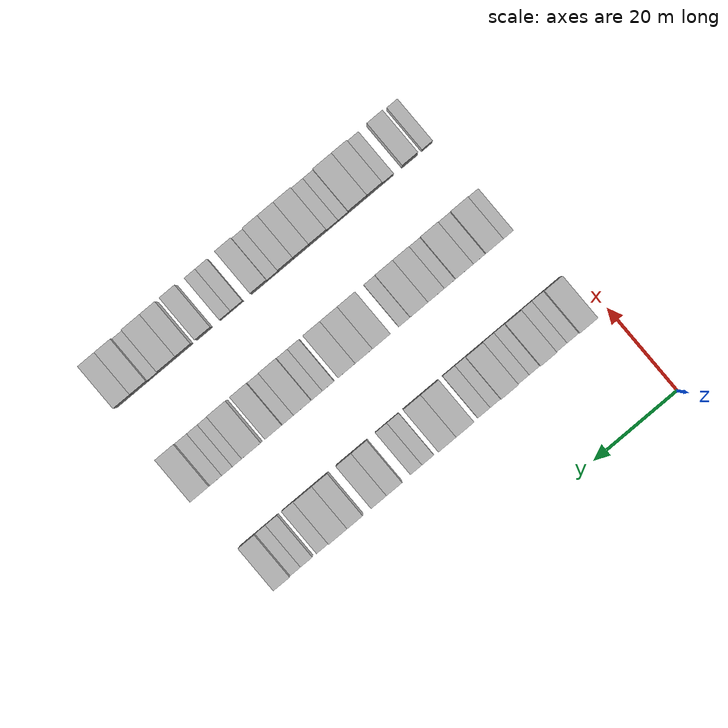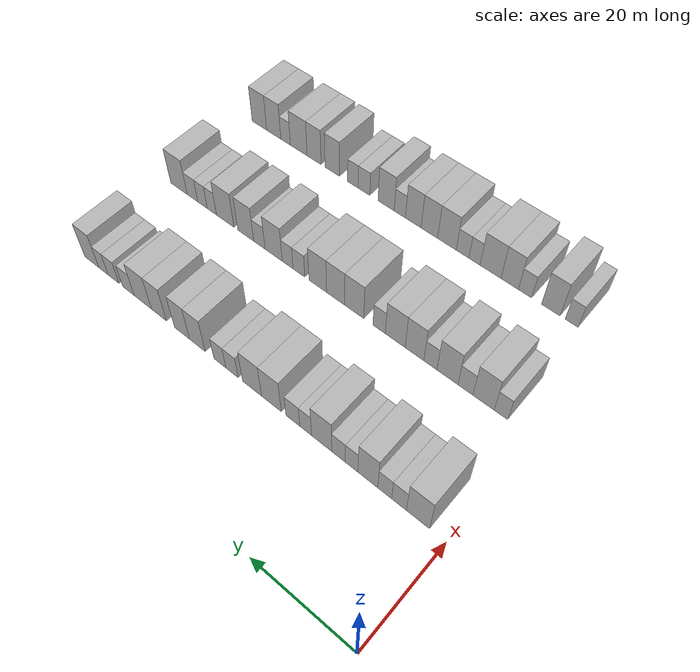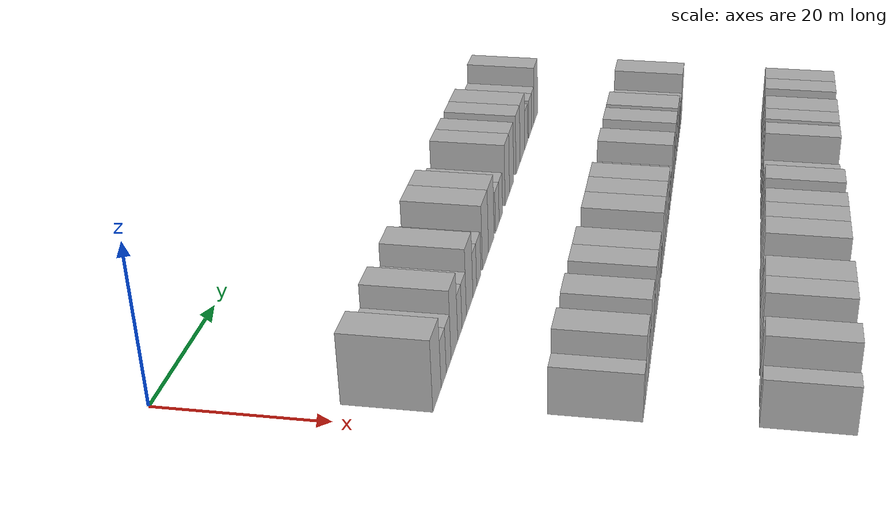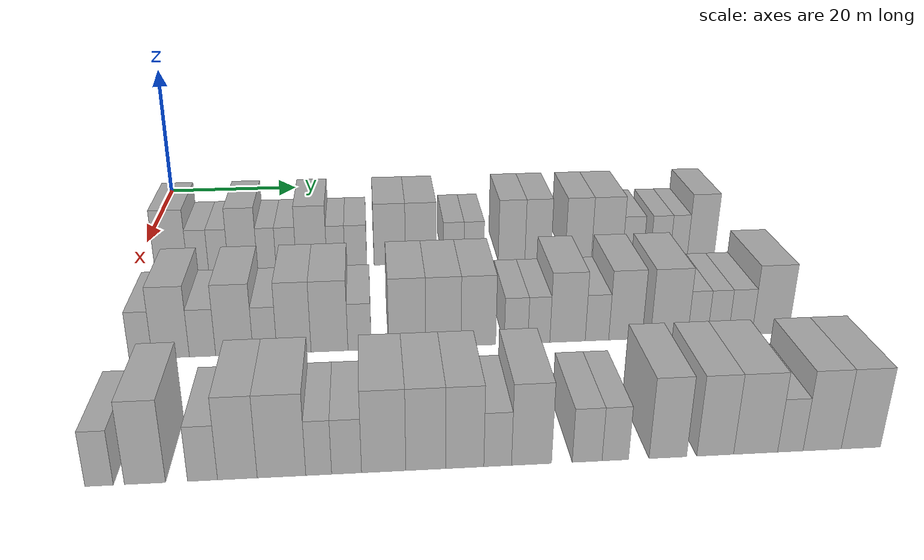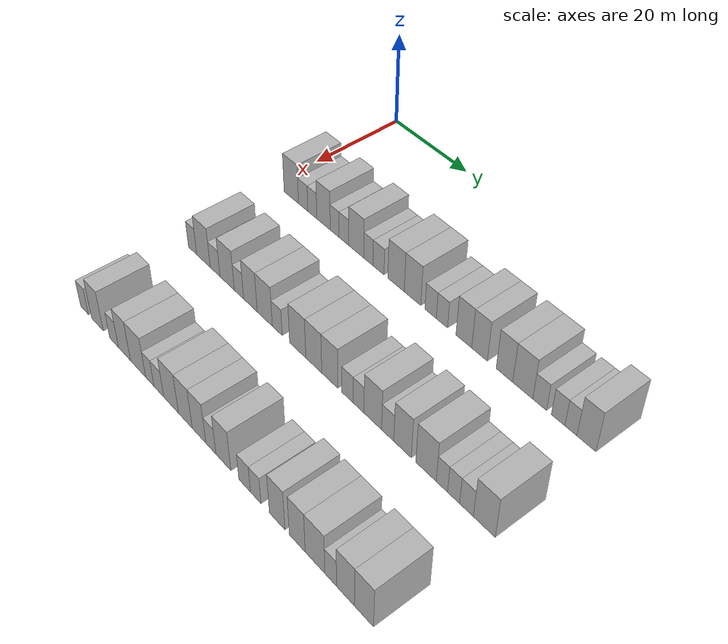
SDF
<sdf version="1.6">
 <world name="default">
  <model name="building_66">
   <static>1</static>
   <pose>25.0000 5.2061 0 0.000000 0.000000 0.000000</pose>
   <link name="link">
    <pose>0 0 4.50 0 0 0</pose>
    <collision name="collision"><geometry><box><size>10.0000 4.2936 9.0000</size></box></geometry></collision>
    <visual name="visual">
     <cast_shadows>0</cast_shadows>
     <geometry><box><size>10.0000 4.2936 9.0000</size></box></geometry>
     <material>
      <script>
       <uri>model://HANNAS_wall/materials/scripts</uri>
       <uri>model://HANNAS_wall/materials/textures</uri>
       <name>vrc/HANNAS_wall</name>
      </script>
     </material>
    </visual>
   </link>
  </model>
  <model name="building_67">
   <static>1</static>
   <pose>25.0000 8.7411 0 0.000000 0.000000 0.000000</pose>
   <link name="link">
    <pose>0 0 3.00 0 0 0</pose>
    <collision name="collision"><geometry><box><size>10.0000 2.7764 6.0000</size></box></geometry></collision>
    <visual name="visual">
     <cast_shadows>0</cast_shadows>
     <geometry><box><size>10.0000 2.7764 6.0000</size></box></geometry>
     <material>
      <script>
       <uri>model://HANNAS_wall/materials/scripts</uri>
       <uri>model://HANNAS_wall/materials/textures</uri>
       <name>vrc/HANNAS_wall</name>
      </script>
     </material>
    </visual>
   </link>
  </model>
  <model name="building_68">
   <static>1</static>
   <pose>25.0000 11.4494 0 0.000000 0.000000 0.000000</pose>
   <link name="link">
    <pose>0 0 3.00 0 0 0</pose>
    <collision name="collision"><geometry><box><size>10.0000 2.6401 6.0000</size></box></geometry></collision>
    <visual name="visual">
     <cast_shadows>0</cast_shadows>
     <geometry><box><size>10.0000 2.6401 6.0000</size></box></geometry>
     <material>
      <script>
       <uri>model://HANNAS_wall/materials/scripts</uri>
       <uri>model://HANNAS_wall/materials/textures</uri>
       <name>vrc/HANNAS_wall</name>
      </script>
     </material>
    </visual>
   </link>
  </model>
  <model name="building_69">
   <static>1</static>
   <pose>25.0000 14.7061 0 0.000000 0.000000 0.000000</pose>
   <link name="link">
    <pose>0 0 4.50 0 0 0</pose>
    <collision name="collision"><geometry><box><size>10.0000 3.8732 9.0000</size></box></geometry></collision>
    <visual name="visual">
     <cast_shadows>0</cast_shadows>
     <geometry><box><size>10.0000 3.8732 9.0000</size></box></geometry>
     <material>
      <script>
       <uri>model://HANNAS_wall/materials/scripts</uri>
       <uri>model://HANNAS_wall/materials/textures</uri>
       <name>vrc/HANNAS_wall</name>
      </script>
     </material>
    </visual>
   </link>
  </model>
  <model name="building_70">
   <static>1</static>
   <pose>25.0000 17.8918 0 0.000000 0.000000 0.000000</pose>
   <link name="link">
    <pose>0 0 3.00 0 0 0</pose>
    <collision name="collision"><geometry><box><size>10.0000 2.4983 6.0000</size></box></geometry></collision>
    <visual name="visual">
     <cast_shadows>0</cast_shadows>
     <geometry><box><size>10.0000 2.4983 6.0000</size></box></geometry>
     <material>
      <script>
       <uri>model://HANNAS_wall/materials/scripts</uri>
       <uri>model://HANNAS_wall/materials/textures</uri>
       <name>vrc/HANNAS_wall</name>
      </script>
     </material>
    </visual>
   </link>
  </model>
  <model name="building_71">
   <static>1</static>
   <pose>25.0000 20.4975 0 0.000000 0.000000 0.000000</pose>
   <link name="link">
    <pose>0 0 3.00 0 0 0</pose>
    <collision name="collision"><geometry><box><size>10.0000 2.7131 6.0000</size></box></geometry></collision>
    <visual name="visual">
     <cast_shadows>0</cast_shadows>
     <geometry><box><size>10.0000 2.7131 6.0000</size></box></geometry>
     <material>
      <script>
       <uri>model://HANNAS_wall/materials/scripts</uri>
       <uri>model://HANNAS_wall/materials/textures</uri>
       <name>vrc/HANNAS_wall</name>
      </script>
     </material>
    </visual>
   </link>
  </model>
  <model name="building_72">
   <static>1</static>
   <pose>25.0000 23.9195 0 0.000000 0.000000 0.000000</pose>
   <link name="link">
    <pose>0 0 4.50 0 0 0</pose>
    <collision name="collision"><geometry><box><size>10.0000 4.1309 9.0000</size></box></geometry></collision>
    <visual name="visual">
     <cast_shadows>0</cast_shadows>
     <geometry><box><size>10.0000 4.1309 9.0000</size></box></geometry>
     <material>
      <script>
       <uri>model://HANNAS_wall/materials/scripts</uri>
       <uri>model://HANNAS_wall/materials/textures</uri>
       <name>vrc/HANNAS_wall</name>
      </script>
     </material>
    </visual>
   </link>
  </model>
  <model name="building_73">
   <static>1</static>
   <pose>25.0000 27.2140 0 0.000000 0.000000 0.000000</pose>
   <link name="link">
    <pose>0 0 3.00 0 0 0</pose>
    <collision name="collision"><geometry><box><size>10.0000 2.4582 6.0000</size></box></geometry></collision>
    <visual name="visual">
     <cast_shadows>0</cast_shadows>
     <geometry><box><size>10.0000 2.4582 6.0000</size></box></geometry>
     <material>
      <script>
       <uri>model://HANNAS_wall/materials/scripts</uri>
       <uri>model://HANNAS_wall/materials/textures</uri>
       <name>vrc/HANNAS_wall</name>
      </script>
     </material>
    </visual>
   </link>
  </model>
  <model name="building_74">
   <static>1</static>
   <pose>25.0000 29.9164 0 0.000000 0.000000 0.000000</pose>
   <link name="link">
    <pose>0 0 3.00 0 0 0</pose>
    <collision name="collision"><geometry><box><size>10.0000 2.9465 6.0000</size></box></geometry></collision>
    <visual name="visual">
     <cast_shadows>0</cast_shadows>
     <geometry><box><size>10.0000 2.9465 6.0000</size></box></geometry>
     <material>
      <script>
       <uri>model://HANNAS_wall/materials/scripts</uri>
       <uri>model://HANNAS_wall/materials/textures</uri>
       <name>vrc/HANNAS_wall</name>
      </script>
     </material>
    </visual>
   </link>
  </model>
  <model name="building_75">
   <static>1</static>
   <pose>25.0000 34.5251 0 0.000000 0.000000 0.000000</pose>
   <link name="link">
    <pose>0 0 4.50 0 0 0</pose>
    <collision name="collision"><geometry><box><size>10.0000 4.2709 9.0000</size></box></geometry></collision>
    <visual name="visual">
     <cast_shadows>0</cast_shadows>
     <geometry><box><size>10.0000 4.2709 9.0000</size></box></geometry>
     <material>
      <script>
       <uri>model://HANNAS_wall/materials/scripts</uri>
       <uri>model://HANNAS_wall/materials/textures</uri>
       <name>vrc/HANNAS_wall</name>
      </script>
     </material>
    </visual>
   </link>
  </model>
  <model name="building_76">
   <static>1</static>
   <pose>25.0000 38.7556 0 0.000000 0.000000 0.000000</pose>
   <link name="link">
    <pose>0 0 4.50 0 0 0</pose>
    <collision name="collision"><geometry><box><size>10.0000 4.1902 9.0000</size></box></geometry></collision>
    <visual name="visual">
     <cast_shadows>0</cast_shadows>
     <geometry><box><size>10.0000 4.1902 9.0000</size></box></geometry>
     <material>
      <script>
       <uri>model://HANNAS_wall/materials/scripts</uri>
       <uri>model://HANNAS_wall/materials/textures</uri>
       <name>vrc/HANNAS_wall</name>
      </script>
     </material>
    </visual>
   </link>
  </model>
  <model name="building_77">
   <static>1</static>
   <pose>25.0000 43.2649 0 0.000000 0.000000 0.000000</pose>
   <link name="link">
    <pose>0 0 3.00 0 0 0</pose>
    <collision name="collision"><geometry><box><size>10.0000 2.8284 6.0000</size></box></geometry></collision>
    <visual name="visual">
     <cast_shadows>0</cast_shadows>
     <geometry><box><size>10.0000 2.8284 6.0000</size></box></geometry>
     <material>
      <script>
       <uri>model://HANNAS_wall/materials/scripts</uri>
       <uri>model://HANNAS_wall/materials/textures</uri>
       <name>vrc/HANNAS_wall</name>
      </script>
     </material>
    </visual>
   </link>
  </model>
  <model name="building_78">
   <static>1</static>
   <pose>25.0000 46.0565 0 0.000000 0.000000 0.000000</pose>
   <link name="link">
    <pose>0 0 3.00 0 0 0</pose>
    <collision name="collision"><geometry><box><size>10.0000 2.7549 6.0000</size></box></geometry></collision>
    <visual name="visual">
     <cast_shadows>0</cast_shadows>
     <geometry><box><size>10.0000 2.7549 6.0000</size></box></geometry>
     <material>
      <script>
       <uri>model://HANNAS_wall/materials/scripts</uri>
       <uri>model://HANNAS_wall/materials/textures</uri>
       <name>vrc/HANNAS_wall</name>
      </script>
     </material>
    </visual>
   </link>
  </model>
  <model name="building_79">
   <static>1</static>
   <pose>25.0000 51.2900 0 0.000000 0.000000 0.000000</pose>
   <link name="link">
    <pose>0 0 4.50 0 0 0</pose>
    <collision name="collision"><geometry><box><size>10.0000 3.7120 9.0000</size></box></geometry></collision>
    <visual name="visual">
     <cast_shadows>0</cast_shadows>
     <geometry><box><size>10.0000 3.7120 9.0000</size></box></geometry>
     <material>
      <script>
       <uri>model://HANNAS_wall/materials/scripts</uri>
       <uri>model://HANNAS_wall/materials/textures</uri>
       <name>vrc/HANNAS_wall</name>
      </script>
     </material>
    </visual>
   </link>
  </model>
  <model name="building_80">
   <static>1</static>
   <pose>25.0000 54.9611 0 0.000000 0.000000 0.000000</pose>
   <link name="link">
    <pose>0 0 4.50 0 0 0</pose>
    <collision name="collision"><geometry><box><size>10.0000 3.6303 9.0000</size></box></geometry></collision>
    <visual name="visual">
     <cast_shadows>0</cast_shadows>
     <geometry><box><size>10.0000 3.6303 9.0000</size></box></geometry>
     <material>
      <script>
       <uri>model://HANNAS_wall/materials/scripts</uri>
       <uri>model://HANNAS_wall/materials/textures</uri>
       <name>vrc/HANNAS_wall</name>
      </script>
     </material>
    </visual>
   </link>
  </model>
  <model name="building_81">
   <static>1</static>
   <pose>25.0000 60.6178 0 0.000000 0.000000 0.000000</pose>
   <link name="link">
    <pose>0 0 4.50 0 0 0</pose>
    <collision name="collision"><geometry><box><size>10.0000 3.6830 9.0000</size></box></geometry></collision>
    <visual name="visual">
     <cast_shadows>0</cast_shadows>
     <geometry><box><size>10.0000 3.6830 9.0000</size></box></geometry>
     <material>
      <script>
       <uri>model://HANNAS_wall/materials/scripts</uri>
       <uri>model://HANNAS_wall/materials/textures</uri>
       <name>vrc/HANNAS_wall</name>
      </script>
     </material>
    </visual>
   </link>
  </model>
  <model name="building_82">
   <static>1</static>
   <pose>25.0000 64.6573 0 0.000000 0.000000 0.000000</pose>
   <link name="link">
    <pose>0 0 4.50 0 0 0</pose>
    <collision name="collision"><geometry><box><size>10.0000 4.3962 9.0000</size></box></geometry></collision>
    <visual name="visual">
     <cast_shadows>0</cast_shadows>
     <geometry><box><size>10.0000 4.3962 9.0000</size></box></geometry>
     <material>
      <script>
       <uri>model://HANNAS_wall/materials/scripts</uri>
       <uri>model://HANNAS_wall/materials/textures</uri>
       <name>vrc/HANNAS_wall</name>
      </script>
     </material>
    </visual>
   </link>
  </model>
  <model name="building_83">
   <static>1</static>
   <pose>25.0000 68.3282 0 0.000000 0.000000 0.000000</pose>
   <link name="link">
    <pose>0 0 3.00 0 0 0</pose>
    <collision name="collision"><geometry><box><size>10.0000 2.9456 6.0000</size></box></geometry></collision>
    <visual name="visual">
     <cast_shadows>0</cast_shadows>
     <geometry><box><size>10.0000 2.9456 6.0000</size></box></geometry>
     <material>
      <script>
       <uri>model://HANNAS_wall/materials/scripts</uri>
       <uri>model://HANNAS_wall/materials/textures</uri>
       <name>vrc/HANNAS_wall</name>
      </script>
     </material>
    </visual>
   </link>
  </model>
  <model name="building_84">
   <static>1</static>
   <pose>25.0000 72.2063 0 0.000000 0.000000 0.000000</pose>
   <link name="link">
    <pose>0 0 3.00 0 0 0</pose>
    <collision name="collision"><geometry><box><size>10.0000 2.8106 6.0000</size></box></geometry></collision>
    <visual name="visual">
     <cast_shadows>0</cast_shadows>
     <geometry><box><size>10.0000 2.8106 6.0000</size></box></geometry>
     <material>
      <script>
       <uri>model://HANNAS_wall/materials/scripts</uri>
       <uri>model://HANNAS_wall/materials/textures</uri>
       <name>vrc/HANNAS_wall</name>
      </script>
     </material>
    </visual>
   </link>
  </model>
  <model name="building_85">
   <static>1</static>
   <pose>25.0000 74.8419 0 0.000000 0.000000 0.000000</pose>
   <link name="link">
    <pose>0 0 3.00 0 0 0</pose>
    <collision name="collision"><geometry><box><size>10.0000 2.4606 6.0000</size></box></geometry></collision>
    <visual name="visual">
     <cast_shadows>0</cast_shadows>
     <geometry><box><size>10.0000 2.4606 6.0000</size></box></geometry>
     <material>
      <script>
       <uri>model://HANNAS_wall/materials/scripts</uri>
       <uri>model://HANNAS_wall/materials/textures</uri>
       <name>vrc/HANNAS_wall</name>
      </script>
     </material>
    </visual>
   </link>
  </model>
  <model name="building_86">
   <static>1</static>
   <pose>25.0000 78.0016 0 0.000000 0.000000 0.000000</pose>
   <link name="link">
    <pose>0 0 4.50 0 0 0</pose>
    <collision name="collision"><geometry><box><size>10.0000 3.8588 9.0000</size></box></geometry></collision>
    <visual name="visual">
     <cast_shadows>0</cast_shadows>
     <geometry><box><size>10.0000 3.8588 9.0000</size></box></geometry>
     <material>
      <script>
       <uri>model://HANNAS_wall/materials/scripts</uri>
       <uri>model://HANNAS_wall/materials/textures</uri>
       <name>vrc/HANNAS_wall</name>
      </script>
     </material>
    </visual>
   </link>
  </model>
  <model name="building_194">
   <static>1</static>
   <pose>47.0000 5.6802 0 0.000000 0.000000 0.000000</pose>
   <link name="link">
    <pose>0 0 3.00 0 0 0</pose>
    <collision name="collision"><geometry><box><size>10.0000 2.5621 6.0000</size></box></geometry></collision>
    <visual name="visual">
     <cast_shadows>0</cast_shadows>
     <geometry><box><size>10.0000 2.5621 6.0000</size></box></geometry>
     <material>
      <script>
       <uri>model://HANNAS_wall/materials/scripts</uri>
       <uri>model://HANNAS_wall/materials/textures</uri>
       <name>vrc/HANNAS_wall</name>
      </script>
     </material>
    </visual>
   </link>
  </model>
  <model name="building_195">
   <static>1</static>
   <pose>47.0000 9.0286 0 0.000000 0.000000 0.000000</pose>
   <link name="link">
    <pose>0 0 4.50 0 0 0</pose>
    <collision name="collision"><geometry><box><size>10.0000 4.1348 9.0000</size></box></geometry></collision>
    <visual name="visual">
     <cast_shadows>0</cast_shadows>
     <geometry><box><size>10.0000 4.1348 9.0000</size></box></geometry>
     <material>
      <script>
       <uri>model://HANNAS_wall/materials/scripts</uri>
       <uri>model://HANNAS_wall/materials/textures</uri>
       <name>vrc/HANNAS_wall</name>
      </script>
     </material>
    </visual>
   </link>
  </model>
  <model name="building_196">
   <static>1</static>
   <pose>47.0000 12.5725 0 0.000000 0.000000 0.000000</pose>
   <link name="link">
    <pose>0 0 3.00 0 0 0</pose>
    <collision name="collision"><geometry><box><size>10.0000 2.9532 6.0000</size></box></geometry></collision>
    <visual name="visual">
     <cast_shadows>0</cast_shadows>
     <geometry><box><size>10.0000 2.9532 6.0000</size></box></geometry>
     <material>
      <script>
       <uri>model://HANNAS_wall/materials/scripts</uri>
       <uri>model://HANNAS_wall/materials/textures</uri>
       <name>vrc/HANNAS_wall</name>
      </script>
     </material>
    </visual>
   </link>
  </model>
  <model name="building_197">
   <static>1</static>
   <pose>47.0000 16.1560 0 0.000000 0.000000 0.000000</pose>
   <link name="link">
    <pose>0 0 4.50 0 0 0</pose>
    <collision name="collision"><geometry><box><size>10.0000 4.2137 9.0000</size></box></geometry></collision>
    <visual name="visual">
     <cast_shadows>0</cast_shadows>
     <geometry><box><size>10.0000 4.2137 9.0000</size></box></geometry>
     <material>
      <script>
       <uri>model://HANNAS_wall/materials/scripts</uri>
       <uri>model://HANNAS_wall/materials/textures</uri>
       <name>vrc/HANNAS_wall</name>
      </script>
     </material>
    </visual>
   </link>
  </model>
  <model name="building_198">
   <static>1</static>
   <pose>47.0000 19.6047 0 0.000000 0.000000 0.000000</pose>
   <link name="link">
    <pose>0 0 3.00 0 0 0</pose>
    <collision name="collision"><geometry><box><size>10.0000 2.6838 6.0000</size></box></geometry></collision>
    <visual name="visual">
     <cast_shadows>0</cast_shadows>
     <geometry><box><size>10.0000 2.6838 6.0000</size></box></geometry>
     <material>
      <script>
       <uri>model://HANNAS_wall/materials/scripts</uri>
       <uri>model://HANNAS_wall/materials/textures</uri>
       <name>vrc/HANNAS_wall</name>
      </script>
     </material>
    </visual>
   </link>
  </model>
  <model name="building_199">
   <static>1</static>
   <pose>47.0000 22.8866 0 0.000000 0.000000 0.000000</pose>
   <link name="link">
    <pose>0 0 4.50 0 0 0</pose>
    <collision name="collision"><geometry><box><size>10.0000 3.8800 9.0000</size></box></geometry></collision>
    <visual name="visual">
     <cast_shadows>0</cast_shadows>
     <geometry><box><size>10.0000 3.8800 9.0000</size></box></geometry>
     <material>
      <script>
       <uri>model://HANNAS_wall/materials/scripts</uri>
       <uri>model://HANNAS_wall/materials/textures</uri>
       <name>vrc/HANNAS_wall</name>
      </script>
     </material>
    </visual>
   </link>
  </model>
  <model name="building_200">
   <static>1</static>
   <pose>47.0000 26.9301 0 0.000000 0.000000 0.000000</pose>
   <link name="link">
    <pose>0 0 4.50 0 0 0</pose>
    <collision name="collision"><geometry><box><size>10.0000 4.2070 9.0000</size></box></geometry></collision>
    <visual name="visual">
     <cast_shadows>0</cast_shadows>
     <geometry><box><size>10.0000 4.2070 9.0000</size></box></geometry>
     <material>
      <script>
       <uri>model://HANNAS_wall/materials/scripts</uri>
       <uri>model://HANNAS_wall/materials/textures</uri>
       <name>vrc/HANNAS_wall</name>
      </script>
     </material>
    </visual>
   </link>
  </model>
  <model name="building_201">
   <static>1</static>
   <pose>47.0000 30.3722 0 0.000000 0.000000 0.000000</pose>
   <link name="link">
    <pose>0 0 3.00 0 0 0</pose>
    <collision name="collision"><geometry><box><size>10.0000 2.6772 6.0000</size></box></geometry></collision>
    <visual name="visual">
     <cast_shadows>0</cast_shadows>
     <geometry><box><size>10.0000 2.6772 6.0000</size></box></geometry>
     <material>
      <script>
       <uri>model://HANNAS_wall/materials/scripts</uri>
       <uri>model://HANNAS_wall/materials/textures</uri>
       <name>vrc/HANNAS_wall</name>
      </script>
     </material>
    </visual>
   </link>
  </model>
  <model name="building_202">
   <static>1</static>
   <pose>47.0000 35.8402 0 0.000000 0.000000 0.000000</pose>
   <link name="link">
    <pose>0 0 4.50 0 0 0</pose>
    <collision name="collision"><geometry><box><size>10.0000 4.2588 9.0000</size></box></geometry></collision>
    <visual name="visual">
     <cast_shadows>0</cast_shadows>
     <geometry><box><size>10.0000 4.2588 9.0000</size></box></geometry>
     <material>
      <script>
       <uri>model://HANNAS_wall/materials/scripts</uri>
       <uri>model://HANNAS_wall/materials/textures</uri>
       <name>vrc/HANNAS_wall</name>
      </script>
     </material>
    </visual>
   </link>
  </model>
  <model name="building_203">
   <static>1</static>
   <pose>47.0000 40.0202 0 0.000000 0.000000 0.000000</pose>
   <link name="link">
    <pose>0 0 4.50 0 0 0</pose>
    <collision name="collision"><geometry><box><size>10.0000 4.1012 9.0000</size></box></geometry></collision>
    <visual name="visual">
     <cast_shadows>0</cast_shadows>
     <geometry><box><size>10.0000 4.1012 9.0000</size></box></geometry>
     <material>
      <script>
       <uri>model://HANNAS_wall/materials/scripts</uri>
       <uri>model://HANNAS_wall/materials/textures</uri>
       <name>vrc/HANNAS_wall</name>
      </script>
     </material>
    </visual>
   </link>
  </model>
  <model name="building_204">
   <static>1</static>
   <pose>47.0000 44.0955 0 0.000000 0.000000 0.000000</pose>
   <link name="link">
    <pose>0 0 4.50 0 0 0</pose>
    <collision name="collision"><geometry><box><size>10.0000 4.0493 9.0000</size></box></geometry></collision>
    <visual name="visual">
     <cast_shadows>0</cast_shadows>
     <geometry><box><size>10.0000 4.0493 9.0000</size></box></geometry>
     <material>
      <script>
       <uri>model://HANNAS_wall/materials/scripts</uri>
       <uri>model://HANNAS_wall/materials/textures</uri>
       <name>vrc/HANNAS_wall</name>
      </script>
     </material>
    </visual>
   </link>
  </model>
  <model name="building_205">
   <static>1</static>
   <pose>47.0000 48.5069 0 0.000000 0.000000 0.000000</pose>
   <link name="link">
    <pose>0 0 3.00 0 0 0</pose>
    <collision name="collision"><geometry><box><size>10.0000 2.7736 6.0000</size></box></geometry></collision>
    <visual name="visual">
     <cast_shadows>0</cast_shadows>
     <geometry><box><size>10.0000 2.7736 6.0000</size></box></geometry>
     <material>
      <script>
       <uri>model://HANNAS_wall/materials/scripts</uri>
       <uri>model://HANNAS_wall/materials/textures</uri>
       <name>vrc/HANNAS_wall</name>
      </script>
     </material>
    </visual>
   </link>
  </model>
  <model name="building_206">
   <static>1</static>
   <pose>47.0000 51.1870 0 0.000000 0.000000 0.000000</pose>
   <link name="link">
    <pose>0 0 3.00 0 0 0</pose>
    <collision name="collision"><geometry><box><size>10.0000 2.5866 6.0000</size></box></geometry></collision>
    <visual name="visual">
     <cast_shadows>0</cast_shadows>
     <geometry><box><size>10.0000 2.5866 6.0000</size></box></geometry>
     <material>
      <script>
       <uri>model://HANNAS_wall/materials/scripts</uri>
       <uri>model://HANNAS_wall/materials/textures</uri>
       <name>vrc/HANNAS_wall</name>
      </script>
     </material>
    </visual>
   </link>
  </model>
  <model name="building_207">
   <static>1</static>
   <pose>47.0000 54.5721 0 0.000000 0.000000 0.000000</pose>
   <link name="link">
    <pose>0 0 4.50 0 0 0</pose>
    <collision name="collision"><geometry><box><size>10.0000 4.1836 9.0000</size></box></geometry></collision>
    <visual name="visual">
     <cast_shadows>0</cast_shadows>
     <geometry><box><size>10.0000 4.1836 9.0000</size></box></geometry>
     <material>
      <script>
       <uri>model://HANNAS_wall/materials/scripts</uri>
       <uri>model://HANNAS_wall/materials/textures</uri>
       <name>vrc/HANNAS_wall</name>
      </script>
     </material>
    </visual>
   </link>
  </model>
  <model name="building_208">
   <static>1</static>
   <pose>47.0000 58.0602 0 0.000000 0.000000 0.000000</pose>
   <link name="link">
    <pose>0 0 3.00 0 0 0</pose>
    <collision name="collision"><geometry><box><size>10.0000 2.7925 6.0000</size></box></geometry></collision>
    <visual name="visual">
     <cast_shadows>0</cast_shadows>
     <geometry><box><size>10.0000 2.7925 6.0000</size></box></geometry>
     <material>
      <script>
       <uri>model://HANNAS_wall/materials/scripts</uri>
       <uri>model://HANNAS_wall/materials/textures</uri>
       <name>vrc/HANNAS_wall</name>
      </script>
     </material>
    </visual>
   </link>
  </model>
  <model name="building_209">
   <static>1</static>
   <pose>47.0000 61.4502 0 0.000000 0.000000 0.000000</pose>
   <link name="link">
    <pose>0 0 4.50 0 0 0</pose>
    <collision name="collision"><geometry><box><size>10.0000 3.9876 9.0000</size></box></geometry></collision>
    <visual name="visual">
     <cast_shadows>0</cast_shadows>
     <geometry><box><size>10.0000 3.9876 9.0000</size></box></geometry>
     <material>
      <script>
       <uri>model://HANNAS_wall/materials/scripts</uri>
       <uri>model://HANNAS_wall/materials/textures</uri>
       <name>vrc/HANNAS_wall</name>
      </script>
     </material>
    </visual>
   </link>
  </model>
  <model name="building_210">
   <static>1</static>
   <pose>47.0000 66.6831 0 0.000000 0.000000 0.000000</pose>
   <link name="link">
    <pose>0 0 4.50 0 0 0</pose>
    <collision name="collision"><geometry><box><size>10.0000 4.4782 9.0000</size></box></geometry></collision>
    <visual name="visual">
     <cast_shadows>0</cast_shadows>
     <geometry><box><size>10.0000 4.4782 9.0000</size></box></geometry>
     <material>
      <script>
       <uri>model://HANNAS_wall/materials/scripts</uri>
       <uri>model://HANNAS_wall/materials/textures</uri>
       <name>vrc/HANNAS_wall</name>
      </script>
     </material>
    </visual>
   </link>
  </model>
  <model name="building_211">
   <static>1</static>
   <pose>47.0000 70.1257 0 0.000000 0.000000 0.000000</pose>
   <link name="link">
    <pose>0 0 3.00 0 0 0</pose>
    <collision name="collision"><geometry><box><size>10.0000 2.4071 6.0000</size></box></geometry></collision>
    <visual name="visual">
     <cast_shadows>0</cast_shadows>
     <geometry><box><size>10.0000 2.4071 6.0000</size></box></geometry>
     <material>
      <script>
       <uri>model://HANNAS_wall/materials/scripts</uri>
       <uri>model://HANNAS_wall/materials/textures</uri>
       <name>vrc/HANNAS_wall</name>
      </script>
     </material>
    </visual>
   </link>
  </model>
  <model name="building_212">
   <static>1</static>
   <pose>47.0000 72.5947 0 0.000000 0.000000 0.000000</pose>
   <link name="link">
    <pose>0 0 3.00 0 0 0</pose>
    <collision name="collision"><geometry><box><size>10.0000 2.5308 6.0000</size></box></geometry></collision>
    <visual name="visual">
     <cast_shadows>0</cast_shadows>
     <geometry><box><size>10.0000 2.5308 6.0000</size></box></geometry>
     <material>
      <script>
       <uri>model://HANNAS_wall/materials/scripts</uri>
       <uri>model://HANNAS_wall/materials/textures</uri>
       <name>vrc/HANNAS_wall</name>
      </script>
     </material>
    </visual>
   </link>
  </model>
  <model name="building_213">
   <static>1</static>
   <pose>47.0000 75.2878 0 0.000000 0.000000 0.000000</pose>
   <link name="link">
    <pose>0 0 3.00 0 0 0</pose>
    <collision name="collision"><geometry><box><size>10.0000 2.8554 6.0000</size></box></geometry></collision>
    <visual name="visual">
     <cast_shadows>0</cast_shadows>
     <geometry><box><size>10.0000 2.8554 6.0000</size></box></geometry>
     <material>
      <script>
       <uri>model://HANNAS_wall/materials/scripts</uri>
       <uri>model://HANNAS_wall/materials/textures</uri>
       <name>vrc/HANNAS_wall</name>
      </script>
     </material>
    </visual>
   </link>
  </model>
  <model name="building_214">
   <static>1</static>
   <pose>47.0000 78.9351 0 0.000000 0.000000 0.000000</pose>
   <link name="link">
    <pose>0 0 4.50 0 0 0</pose>
    <collision name="collision"><geometry><box><size>10.0000 4.4391 9.0000</size></box></geometry></collision>
    <visual name="visual">
     <cast_shadows>0</cast_shadows>
     <geometry><box><size>10.0000 4.4391 9.0000</size></box></geometry>
     <material>
      <script>
       <uri>model://HANNAS_wall/materials/scripts</uri>
       <uri>model://HANNAS_wall/materials/textures</uri>
       <name>vrc/HANNAS_wall</name>
      </script>
     </material>
    </visual>
   </link>
  </model>
  <model name="building_309">
   <static>1</static>
   <pose>69.0000 6.4361 0 0.000000 0.000000 0.000000</pose>
   <link name="link">
    <pose>0 0 3.00 0 0 0</pose>
    <collision name="collision"><geometry><box><size>10.0000 2.5580 6.0000</size></box></geometry></collision>
    <visual name="visual">
     <cast_shadows>0</cast_shadows>
     <geometry><box><size>10.0000 2.5580 6.0000</size></box></geometry>
     <material>
      <script>
       <uri>model://HANNAS_wall/materials/scripts</uri>
       <uri>model://HANNAS_wall/materials/textures</uri>
       <name>vrc/HANNAS_wall</name>
      </script>
     </material>
    </visual>
   </link>
  </model>
  <model name="building_310">
   <static>1</static>
   <pose>69.0000 10.5790 0 0.000000 0.000000 0.000000</pose>
   <link name="link">
    <pose>0 0 4.50 0 0 0</pose>
    <collision name="collision"><geometry><box><size>10.0000 3.7277 9.0000</size></box></geometry></collision>
    <visual name="visual">
     <cast_shadows>0</cast_shadows>
     <geometry><box><size>10.0000 3.7277 9.0000</size></box></geometry>
     <material>
      <script>
       <uri>model://HANNAS_wall/materials/scripts</uri>
       <uri>model://HANNAS_wall/materials/textures</uri>
       <name>vrc/HANNAS_wall</name>
      </script>
     </material>
    </visual>
   </link>
  </model>
  <model name="building_311">
   <static>1</static>
   <pose>69.0000 15.8109 0 0.000000 0.000000 0.000000</pose>
   <link name="link">
    <pose>0 0 3.00 0 0 0</pose>
    <collision name="collision"><geometry><box><size>10.0000 2.7362 6.0000</size></box></geometry></collision>
    <visual name="visual">
     <cast_shadows>0</cast_shadows>
     <geometry><box><size>10.0000 2.7362 6.0000</size></box></geometry>
     <material>
      <script>
       <uri>model://HANNAS_wall/materials/scripts</uri>
       <uri>model://HANNAS_wall/materials/textures</uri>
       <name>vrc/HANNAS_wall</name>
      </script>
     </material>
    </visual>
   </link>
  </model>
  <model name="building_312">
   <static>1</static>
   <pose>69.0000 19.0011 0 0.000000 0.000000 0.000000</pose>
   <link name="link">
    <pose>0 0 4.50 0 0 0</pose>
    <collision name="collision"><geometry><box><size>10.0000 3.6443 9.0000</size></box></geometry></collision>
    <visual name="visual">
     <cast_shadows>0</cast_shadows>
     <geometry><box><size>10.0000 3.6443 9.0000</size></box></geometry>
     <material>
      <script>
       <uri>model://HANNAS_wall/materials/scripts</uri>
       <uri>model://HANNAS_wall/materials/textures</uri>
       <name>vrc/HANNAS_wall</name>
      </script>
     </material>
    </visual>
   </link>
  </model>
  <model name="building_313">
   <static>1</static>
   <pose>69.0000 23.0640 0 0.000000 0.000000 0.000000</pose>
   <link name="link">
    <pose>0 0 4.50 0 0 0</pose>
    <collision name="collision"><geometry><box><size>10.0000 4.4814 9.0000</size></box></geometry></collision>
    <visual name="visual">
     <cast_shadows>0</cast_shadows>
     <geometry><box><size>10.0000 4.4814 9.0000</size></box></geometry>
     <material>
      <script>
       <uri>model://HANNAS_wall/materials/scripts</uri>
       <uri>model://HANNAS_wall/materials/textures</uri>
       <name>vrc/HANNAS_wall</name>
      </script>
     </material>
    </visual>
   </link>
  </model>
  <model name="building_314">
   <static>1</static>
   <pose>69.0000 26.5056 0 0.000000 0.000000 0.000000</pose>
   <link name="link">
    <pose>0 0 3.00 0 0 0</pose>
    <collision name="collision"><geometry><box><size>10.0000 2.4018 6.0000</size></box></geometry></collision>
    <visual name="visual">
     <cast_shadows>0</cast_shadows>
     <geometry><box><size>10.0000 2.4018 6.0000</size></box></geometry>
     <material>
      <script>
       <uri>model://HANNAS_wall/materials/scripts</uri>
       <uri>model://HANNAS_wall/materials/textures</uri>
       <name>vrc/HANNAS_wall</name>
      </script>
     </material>
    </visual>
   </link>
  </model>
  <model name="building_315">
   <static>1</static>
   <pose>69.0000 29.1014 0 0.000000 0.000000 0.000000</pose>
   <link name="link">
    <pose>0 0 3.00 0 0 0</pose>
    <collision name="collision"><geometry><box><size>10.0000 2.7899 6.0000</size></box></geometry></collision>
    <visual name="visual">
     <cast_shadows>0</cast_shadows>
     <geometry><box><size>10.0000 2.7899 6.0000</size></box></geometry>
     <material>
      <script>
       <uri>model://HANNAS_wall/materials/scripts</uri>
       <uri>model://HANNAS_wall/materials/textures</uri>
       <name>vrc/HANNAS_wall</name>
      </script>
     </material>
    </visual>
   </link>
  </model>
  <model name="building_316">
   <static>1</static>
   <pose>69.0000 32.5710 0 0.000000 0.000000 0.000000</pose>
   <link name="link">
    <pose>0 0 4.50 0 0 0</pose>
    <collision name="collision"><geometry><box><size>10.0000 4.1493 9.0000</size></box></geometry></collision>
    <visual name="visual">
     <cast_shadows>0</cast_shadows>
     <geometry><box><size>10.0000 4.1493 9.0000</size></box></geometry>
     <material>
      <script>
       <uri>model://HANNAS_wall/materials/scripts</uri>
       <uri>model://HANNAS_wall/materials/textures</uri>
       <name>vrc/HANNAS_wall</name>
      </script>
     </material>
    </visual>
   </link>
  </model>
  <model name="building_317">
   <static>1</static>
   <pose>69.0000 36.5238 0 0.000000 0.000000 0.000000</pose>
   <link name="link">
    <pose>0 0 4.50 0 0 0</pose>
    <collision name="collision"><geometry><box><size>10.0000 3.7564 9.0000</size></box></geometry></collision>
    <visual name="visual">
     <cast_shadows>0</cast_shadows>
     <geometry><box><size>10.0000 3.7564 9.0000</size></box></geometry>
     <material>
      <script>
       <uri>model://HANNAS_wall/materials/scripts</uri>
       <uri>model://HANNAS_wall/materials/textures</uri>
       <name>vrc/HANNAS_wall</name>
      </script>
     </material>
    </visual>
   </link>
  </model>
  <model name="building_318">
   <static>1</static>
   <pose>69.0000 40.2136 0 0.000000 0.000000 0.000000</pose>
   <link name="link">
    <pose>0 0 4.50 0 0 0</pose>
    <collision name="collision"><geometry><box><size>10.0000 3.6231 9.0000</size></box></geometry></collision>
    <visual name="visual">
     <cast_shadows>0</cast_shadows>
     <geometry><box><size>10.0000 3.6231 9.0000</size></box></geometry>
     <material>
      <script>
       <uri>model://HANNAS_wall/materials/scripts</uri>
       <uri>model://HANNAS_wall/materials/textures</uri>
       <name>vrc/HANNAS_wall</name>
      </script>
     </material>
    </visual>
   </link>
  </model>
  <model name="building_319">
   <static>1</static>
   <pose>69.0000 43.3452 0 0.000000 0.000000 0.000000</pose>
   <link name="link">
    <pose>0 0 3.00 0 0 0</pose>
    <collision name="collision"><geometry><box><size>10.0000 2.6401 6.0000</size></box></geometry></collision>
    <visual name="visual">
     <cast_shadows>0</cast_shadows>
     <geometry><box><size>10.0000 2.6401 6.0000</size></box></geometry>
     <material>
      <script>
       <uri>model://HANNAS_wall/materials/scripts</uri>
       <uri>model://HANNAS_wall/materials/textures</uri>
       <name>vrc/HANNAS_wall</name>
      </script>
     </material>
    </visual>
   </link>
  </model>
  <model name="building_320">
   <static>1</static>
   <pose>69.0000 46.5830 0 0.000000 0.000000 0.000000</pose>
   <link name="link">
    <pose>0 0 4.50 0 0 0</pose>
    <collision name="collision"><geometry><box><size>10.0000 3.8355 9.0000</size></box></geometry></collision>
    <visual name="visual">
     <cast_shadows>0</cast_shadows>
     <geometry><box><size>10.0000 3.8355 9.0000</size></box></geometry>
     <material>
      <script>
       <uri>model://HANNAS_wall/materials/scripts</uri>
       <uri>model://HANNAS_wall/materials/textures</uri>
       <name>vrc/HANNAS_wall</name>
      </script>
     </material>
    </visual>
   </link>
  </model>
  <model name="building_321">
   <static>1</static>
   <pose>69.0000 51.9411 0 0.000000 0.000000 0.000000</pose>
   <link name="link">
    <pose>0 0 3.00 0 0 0</pose>
    <collision name="collision"><geometry><box><size>10.0000 2.8808 6.0000</size></box></geometry></collision>
    <visual name="visual">
     <cast_shadows>0</cast_shadows>
     <geometry><box><size>10.0000 2.8808 6.0000</size></box></geometry>
     <material>
      <script>
       <uri>model://HANNAS_wall/materials/scripts</uri>
       <uri>model://HANNAS_wall/materials/textures</uri>
       <name>vrc/HANNAS_wall</name>
      </script>
     </material>
    </visual>
   </link>
  </model>
  <model name="building_322">
   <static>1</static>
   <pose>69.0000 54.6667 0 0.000000 0.000000 0.000000</pose>
   <link name="link">
    <pose>0 0 3.00 0 0 0</pose>
    <collision name="collision"><geometry><box><size>10.0000 2.5704 6.0000</size></box></geometry></collision>
    <visual name="visual">
     <cast_shadows>0</cast_shadows>
     <geometry><box><size>10.0000 2.5704 6.0000</size></box></geometry>
     <material>
      <script>
       <uri>model://HANNAS_wall/materials/scripts</uri>
       <uri>model://HANNAS_wall/materials/textures</uri>
       <name>vrc/HANNAS_wall</name>
      </script>
     </material>
    </visual>
   </link>
  </model>
  <model name="building_323">
   <static>1</static>
   <pose>69.0000 59.7899 0 0.000000 0.000000 0.000000</pose>
   <link name="link">
    <pose>0 0 4.50 0 0 0</pose>
    <collision name="collision"><geometry><box><size>10.0000 3.6761 9.0000</size></box></geometry></collision>
    <visual name="visual">
     <cast_shadows>0</cast_shadows>
     <geometry><box><size>10.0000 3.6761 9.0000</size></box></geometry>
     <material>
      <script>
       <uri>model://HANNAS_wall/materials/scripts</uri>
       <uri>model://HANNAS_wall/materials/textures</uri>
       <name>vrc/HANNAS_wall</name>
      </script>
     </material>
    </visual>
   </link>
  </model>
  <model name="building_324">
   <static>1</static>
   <pose>69.0000 64.4431 0 0.000000 0.000000 0.000000</pose>
   <link name="link">
    <pose>0 0 4.50 0 0 0</pose>
    <collision name="collision"><geometry><box><size>10.0000 3.6301 9.0000</size></box></geometry></collision>
    <visual name="visual">
     <cast_shadows>0</cast_shadows>
     <geometry><box><size>10.0000 3.6301 9.0000</size></box></geometry>
     <material>
      <script>
       <uri>model://HANNAS_wall/materials/scripts</uri>
       <uri>model://HANNAS_wall/materials/textures</uri>
       <name>vrc/HANNAS_wall</name>
      </script>
     </material>
    </visual>
   </link>
  </model>
  <model name="building_325">
   <static>1</static>
   <pose>69.0000 68.4429 0 0.000000 0.000000 0.000000</pose>
   <link name="link">
    <pose>0 0 4.50 0 0 0</pose>
    <collision name="collision"><geometry><box><size>10.0000 4.3696 9.0000</size></box></geometry></collision>
    <visual name="visual">
     <cast_shadows>0</cast_shadows>
     <geometry><box><size>10.0000 4.3696 9.0000</size></box></geometry>
     <material>
      <script>
       <uri>model://HANNAS_wall/materials/scripts</uri>
       <uri>model://HANNAS_wall/materials/textures</uri>
       <name>vrc/HANNAS_wall</name>
      </script>
     </material>
    </visual>
   </link>
  </model>
  <model name="building_326">
   <static>1</static>
   <pose>69.0000 71.8984 0 0.000000 0.000000 0.000000</pose>
   <link name="link">
    <pose>0 0 3.00 0 0 0</pose>
    <collision name="collision"><geometry><box><size>10.0000 2.5413 6.0000</size></box></geometry></collision>
    <visual name="visual">
     <cast_shadows>0</cast_shadows>
     <geometry><box><size>10.0000 2.5413 6.0000</size></box></geometry>
     <material>
      <script>
       <uri>model://HANNAS_wall/materials/scripts</uri>
       <uri>model://HANNAS_wall/materials/textures</uri>
       <name>vrc/HANNAS_wall</name>
      </script>
     </material>
    </visual>
   </link>
  </model>
  <model name="building_327">
   <static>1</static>
   <pose>69.0000 75.0780 0 0.000000 0.000000 0.000000</pose>
   <link name="link">
    <pose>0 0 4.50 0 0 0</pose>
    <collision name="collision"><geometry><box><size>10.0000 3.8180 9.0000</size></box></geometry></collision>
    <visual name="visual">
     <cast_shadows>0</cast_shadows>
     <geometry><box><size>10.0000 3.8180 9.0000</size></box></geometry>
     <material>
      <script>
       <uri>model://HANNAS_wall/materials/scripts</uri>
       <uri>model://HANNAS_wall/materials/textures</uri>
       <name>vrc/HANNAS_wall</name>
      </script>
     </material>
    </visual>
   </link>
  </model>
  <model name="building_328">
   <static>1</static>
   <pose>69.0000 78.9615 0 0.000000 0.000000 0.000000</pose>
   <link name="link">
    <pose>0 0 4.50 0 0 0</pose>
    <collision name="collision"><geometry><box><size>10.0000 3.9489 9.0000</size></box></geometry></collision>
    <visual name="visual">
     <cast_shadows>0</cast_shadows>
     <geometry><box><size>10.0000 3.9489 9.0000</size></box></geometry>
     <material>
      <script>
       <uri>model://HANNAS_wall/materials/scripts</uri>
       <uri>model://HANNAS_wall/materials/textures</uri>
       <name>vrc/HANNAS_wall</name>
      </script>
     </material>
    </visual>
   </link>
  </model>
 </world>
</sdf>
